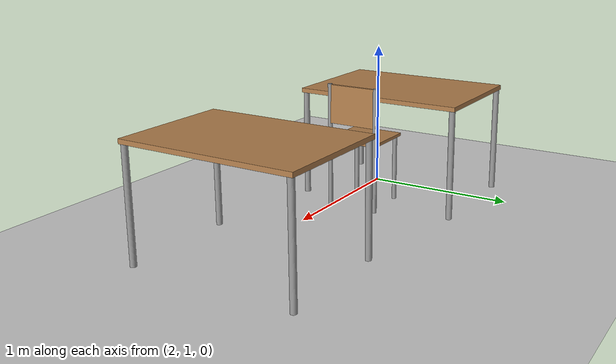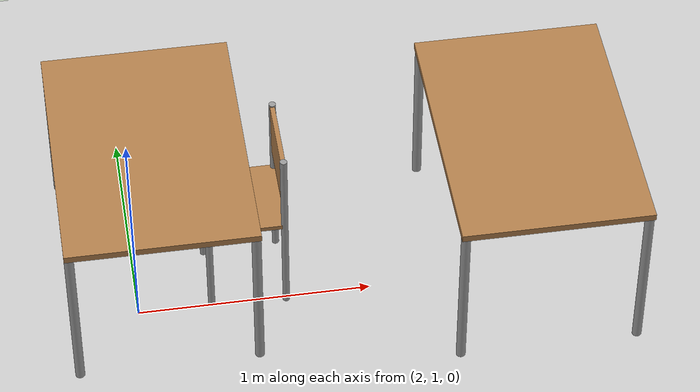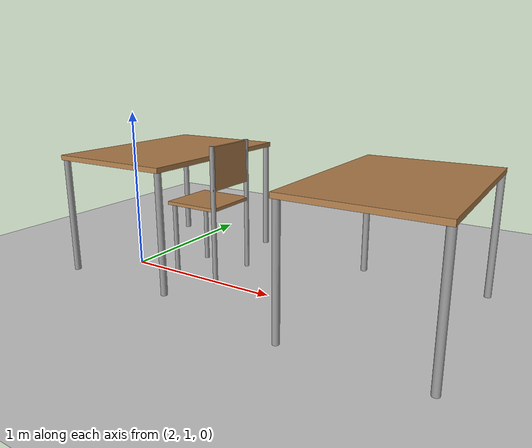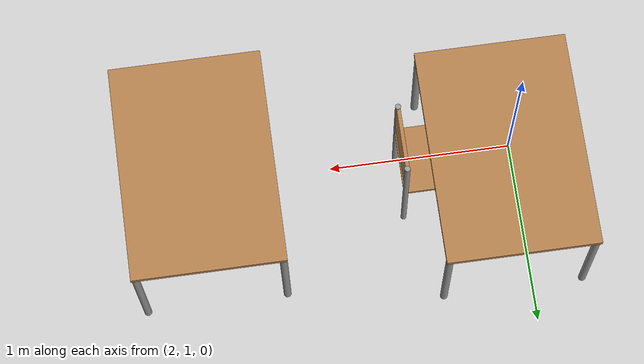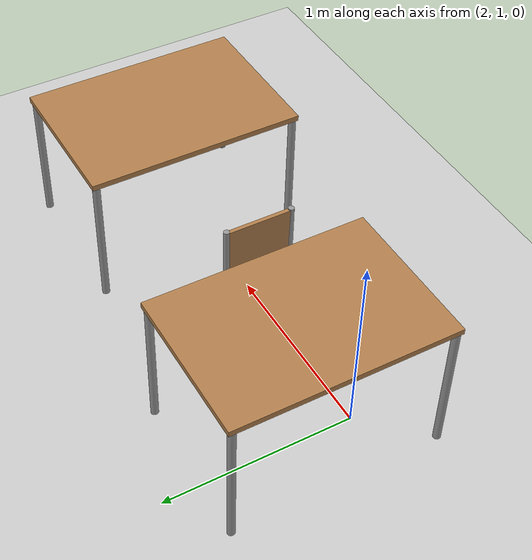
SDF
<sdf version="1.7">
 <world name="default">
  <model name="ground_plane">
   <static>1</static>
   <link name="link">
    <collision name="collision">
     <geometry><plane><normal>0 0 1</normal><size>100 100</size></plane></geometry>
     <surface>
      <contact><collide_bitmask>65535</collide_bitmask></contact>
      <friction><ode><mu>100</mu><mu2>50</mu2></ode></friction>
     </surface>
    </collision>
    <visual name="visual">
     <cast_shadows>0</cast_shadows>
     <geometry><plane><normal>0 0 1</normal><size>100 100</size></plane></geometry>
     <material>
      <script><uri>file://media/materials/scripts/gazebo.material</uri><name>Gazebo/Grey</name></script>
     </material>
    </visual>
   </link>
  </model>
  <model name="table_mod_clone_clone">
   <link name="link">
    <inertial>
     <mass>1</mass>
     <inertia><ixx>1</ixx><ixy>0</ixy><ixz>0</ixz><iyy>1</iyy><iyz>0</iyz><izz>1</izz></inertia>
    </inertial>
    <visual name="visual1">
     <pose>0 0 0.87 0 -0 0</pose>
     <geometry><box><size>1.15 0.8 0.03</size></box></geometry>
     <material>
      <script><uri>file://media/materials/scripts/gazebo.material</uri><name>Gazebo/Wood</name></script>
      <shader type="pixel"><normal_map>__default__</normal_map></shader>
      <ambient>1 1 1 1</ambient>
      <diffuse>1 1 1 1</diffuse>
      <specular>0.2 0.2 0.2 1</specular>
      <emissive>0 0 0 1</emissive>
     </material>
    </visual>
    <visual name="back_right_leg">
     <pose>-0.55 -0.38 0.5 0 -0 0</pose>
     <geometry><cylinder><radius>0.02</radius><length>0.75</length></cylinder></geometry>
     <material>
      <script><uri>file://media/materials/scripts/gazebo.material</uri><name>Gazebo/Grey</name></script>
      <shader type="pixel"><normal_map>__default__</normal_map></shader>
      <ambient>0.3 0.3 0.3 1</ambient>
      <diffuse>0.7 0.7 0.7 1</diffuse>
      <specular>0.01 0.01 0.01 1</specular>
      <emissive>0 0 0 1</emissive>
     </material>
    </visual>
    <visual name="front_right_leg">
     <pose>0.55 -0.38 0.5 0 -0 0</pose>
     <geometry><cylinder><radius>0.02</radius><length>0.75</length></cylinder></geometry>
     <material>
      <script><uri>file://media/materials/scripts/gazebo.material</uri><name>Gazebo/Grey</name></script>
      <shader type="pixel"><normal_map>__default__</normal_map></shader>
      <ambient>0.3 0.3 0.3 1</ambient>
      <diffuse>0.7 0.7 0.7 1</diffuse>
      <specular>0.01 0.01 0.01 1</specular>
      <emissive>0 0 0 1</emissive>
     </material>
    </visual>
    <visual name="back_left_leg">
     <pose>-0.55 0.38 0.5 0 -0 0</pose>
     <geometry><cylinder><radius>0.02</radius><length>0.75</length></cylinder></geometry>
     <material>
      <script><uri>file://media/materials/scripts/gazebo.material</uri><name>Gazebo/Grey</name></script>
      <shader type="pixel"><normal_map>__default__</normal_map></shader>
      <ambient>0.3 0.3 0.3 1</ambient>
      <diffuse>0.7 0.7 0.7 1</diffuse>
      <specular>0.01 0.01 0.01 1</specular>
      <emissive>0 0 0 1</emissive>
     </material>
    </visual>
    <visual name="front_left_leg">
     <pose>0.55 0.38 0.5 0 -0 0</pose>
     <geometry><cylinder><radius>0.02</radius><length>0.75</length></cylinder></geometry>
     <material>
      <script><uri>file://media/materials/scripts/gazebo.material</uri><name>Gazebo/Grey</name></script>
      <shader type="pixel"><normal_map>__default__</normal_map></shader>
      <ambient>0.3 0.3 0.3 1</ambient>
      <diffuse>0.7 0.7 0.7 1</diffuse>
      <specular>0.01 0.01 0.01 1</specular>
      <emissive>0 0 0 1</emissive>
     </material>
    </visual>
    <collision name="surface">
     <pose>0 0 0.87 0 -0 0</pose>
     <geometry><box><size>1.15 0.8 0.03</size></box></geometry>
     <surface>
      <friction>
       <ode><mu>0.6</mu><mu2>0.6</mu2><fdir1>0 0 0</fdir1><slip1>0</slip1><slip2>0</slip2></ode>
       <torsional>
        <coefficient>1</coefficient>
        <patch_radius>0</patch_radius>
        <surface_radius>0</surface_radius>
        <use_patch_radius>1</use_patch_radius>
        <ode><slip>0</slip></ode>
       </torsional>
      </friction>
      <bounce><restitution_coefficient>0</restitution_coefficient><threshold>1e+06</threshold></bounce>
      <contact>
       <collide_without_contact>0</collide_without_contact>
       <collide_without_contact_bitmask>1</collide_without_contact_bitmask>
       <collide_bitmask>1</collide_bitmask>
       <ode>
        <soft_cfm>0</soft_cfm>
        <soft_erp>0.2</soft_erp>
        <kp>1e+13</kp>
        <kd>1</kd>
        <max_vel>0.01</max_vel>
        <min_depth>0</min_depth>
       </ode>
       <bullet>
        <split_impulse>1</split_impulse>
        <split_impulse_penetration_threshold>-0.01</split_impulse_penetration_threshold>
        <soft_cfm>0</soft_cfm>
        <soft_erp>0.2</soft_erp>
        <kp>1e+13</kp>
        <kd>1</kd>
       </bullet>
      </contact>
     </surface>
    </collision>
    <collision name="back_right_leg">
     <pose>-0.55 -0.38 0.5 0 -0 0</pose>
     <geometry><cylinder><radius>0.02</radius><length>0.75</length></cylinder></geometry>
     <surface>
      <friction>
       <ode><mu>1</mu><mu2>1</mu2><fdir1>0 0 0</fdir1><slip1>0</slip1><slip2>0</slip2></ode>
       <torsional>
        <coefficient>1</coefficient>
        <patch_radius>0</patch_radius>
        <surface_radius>0</surface_radius>
        <use_patch_radius>1</use_patch_radius>
        <ode><slip>0</slip></ode>
       </torsional>
      </friction>
      <bounce><restitution_coefficient>0</restitution_coefficient><threshold>1e+06</threshold></bounce>
      <contact>
       <collide_without_contact>0</collide_without_contact>
       <collide_without_contact_bitmask>1</collide_without_contact_bitmask>
       <collide_bitmask>1</collide_bitmask>
       <ode>
        <soft_cfm>0</soft_cfm>
        <soft_erp>0.2</soft_erp>
        <kp>1e+13</kp>
        <kd>1</kd>
        <max_vel>0.01</max_vel>
        <min_depth>0</min_depth>
       </ode>
       <bullet>
        <split_impulse>1</split_impulse>
        <split_impulse_penetration_threshold>-0.01</split_impulse_penetration_threshold>
        <soft_cfm>0</soft_cfm>
        <soft_erp>0.2</soft_erp>
        <kp>1e+13</kp>
        <kd>1</kd>
       </bullet>
      </contact>
     </surface>
    </collision>
    <collision name="back_left_leg">
     <pose>-0.55 0.38 0.5 0 -0 0</pose>
     <geometry><cylinder><radius>0.02</radius><length>0.75</length></cylinder></geometry>
     <surface>
      <friction>
       <ode><mu>1</mu><mu2>1</mu2><fdir1>0 0 0</fdir1><slip1>0</slip1><slip2>0</slip2></ode>
       <torsional>
        <coefficient>1</coefficient>
        <patch_radius>0</patch_radius>
        <surface_radius>0</surface_radius>
        <use_patch_radius>1</use_patch_radius>
        <ode><slip>0</slip></ode>
       </torsional>
      </friction>
      <bounce><restitution_coefficient>0</restitution_coefficient><threshold>1e+06</threshold></bounce>
      <contact>
       <collide_without_contact>0</collide_without_contact>
       <collide_without_contact_bitmask>1</collide_without_contact_bitmask>
       <collide_bitmask>1</collide_bitmask>
       <ode>
        <soft_cfm>0</soft_cfm>
        <soft_erp>0.2</soft_erp>
        <kp>1e+13</kp>
        <kd>1</kd>
        <max_vel>0.01</max_vel>
        <min_depth>0</min_depth>
       </ode>
       <bullet>
        <split_impulse>1</split_impulse>
        <split_impulse_penetration_threshold>-0.01</split_impulse_penetration_threshold>
        <soft_cfm>0</soft_cfm>
        <soft_erp>0.2</soft_erp>
        <kp>1e+13</kp>
        <kd>1</kd>
       </bullet>
      </contact>
     </surface>
    </collision>
    <collision name="front_left_leg">
     <pose>0.55 0.38 0.5 0 -0 0</pose>
     <geometry><cylinder><radius>0.02</radius><length>0.75</length></cylinder></geometry>
     <surface>
      <friction>
       <ode><mu>1</mu><mu2>1</mu2><fdir1>0 0 0</fdir1><slip1>0</slip1><slip2>0</slip2></ode>
       <torsional>
        <coefficient>1</coefficient>
        <patch_radius>0</patch_radius>
        <surface_radius>0</surface_radius>
        <use_patch_radius>1</use_patch_radius>
        <ode><slip>0</slip></ode>
       </torsional>
      </friction>
      <bounce><restitution_coefficient>0</restitution_coefficient><threshold>1e+06</threshold></bounce>
      <contact>
       <collide_without_contact>0</collide_without_contact>
       <collide_without_contact_bitmask>1</collide_without_contact_bitmask>
       <collide_bitmask>1</collide_bitmask>
       <ode>
        <soft_cfm>0</soft_cfm>
        <soft_erp>0.2</soft_erp>
        <kp>1e+13</kp>
        <kd>1</kd>
        <max_vel>0.01</max_vel>
        <min_depth>0</min_depth>
       </ode>
       <bullet>
        <split_impulse>1</split_impulse>
        <split_impulse_penetration_threshold>-0.01</split_impulse_penetration_threshold>
        <soft_cfm>0</soft_cfm>
        <soft_erp>0.2</soft_erp>
        <kp>1e+13</kp>
        <kd>1</kd>
       </bullet>
      </contact>
     </surface>
    </collision>
    <collision name="front_right_leg">
     <pose>0.55 -0.38 0.5 0 -0 0</pose>
     <geometry><cylinder><radius>0.02</radius><length>0.75</length></cylinder></geometry>
     <surface>
      <friction>
       <ode><mu>1</mu><mu2>1</mu2><fdir1>0 0 0</fdir1><slip1>0</slip1><slip2>0</slip2></ode>
       <torsional>
        <coefficient>1</coefficient>
        <patch_radius>0</patch_radius>
        <surface_radius>0</surface_radius>
        <use_patch_radius>1</use_patch_radius>
        <ode><slip>0</slip></ode>
       </torsional>
      </friction>
      <bounce><restitution_coefficient>0</restitution_coefficient><threshold>1e+06</threshold></bounce>
      <contact>
       <collide_without_contact>0</collide_without_contact>
       <collide_without_contact_bitmask>1</collide_without_contact_bitmask>
       <collide_bitmask>1</collide_bitmask>
       <ode>
        <soft_cfm>0</soft_cfm>
        <soft_erp>0.2</soft_erp>
        <kp>1e+13</kp>
        <kd>1</kd>
        <max_vel>0.01</max_vel>
        <min_depth>0</min_depth>
       </ode>
       <bullet>
        <split_impulse>1</split_impulse>
        <split_impulse_penetration_threshold>-0.01</split_impulse_penetration_threshold>
        <soft_cfm>0</soft_cfm>
        <soft_erp>0.2</soft_erp>
        <kp>1e+13</kp>
        <kd>1</kd>
       </bullet>
      </contact>
     </surface>
    </collision>
   </link>
   <static>1</static>
   <pose>2.10296 1.2473 -0.134214 0 0 -1.5708</pose>
  </model>
  <model name="table_mod_clone_clone_0">
   <link name="link">
    <inertial>
     <mass>1</mass>
     <inertia><ixx>1</ixx><ixy>0</ixy><ixz>0</ixz><iyy>1</iyy><iyz>0</iyz><izz>1</izz></inertia>
    </inertial>
    <visual name="visual1">
     <pose>0 0 0.87 0 -0 0</pose>
     <geometry><box><size>1.15 0.8 0.03</size></box></geometry>
     <material>
      <script><uri>file://media/materials/scripts/gazebo.material</uri><name>Gazebo/Wood</name></script>
      <shader type="pixel"><normal_map>__default__</normal_map></shader>
      <ambient>1 1 1 1</ambient>
      <diffuse>1 1 1 1</diffuse>
      <specular>0.2 0.2 0.2 1</specular>
      <emissive>0 0 0 1</emissive>
     </material>
    </visual>
    <visual name="back_right_leg">
     <pose>-0.55 -0.38 0.5 0 -0 0</pose>
     <geometry><cylinder><radius>0.02</radius><length>0.75</length></cylinder></geometry>
     <material>
      <script><uri>file://media/materials/scripts/gazebo.material</uri><name>Gazebo/Grey</name></script>
      <shader type="pixel"><normal_map>__default__</normal_map></shader>
      <ambient>0.3 0.3 0.3 1</ambient>
      <diffuse>0.7 0.7 0.7 1</diffuse>
      <specular>0.01 0.01 0.01 1</specular>
      <emissive>0 0 0 1</emissive>
     </material>
    </visual>
    <visual name="front_right_leg">
     <pose>0.55 -0.38 0.5 0 -0 0</pose>
     <geometry><cylinder><radius>0.02</radius><length>0.75</length></cylinder></geometry>
     <material>
      <script><uri>file://media/materials/scripts/gazebo.material</uri><name>Gazebo/Grey</name></script>
      <shader type="pixel"><normal_map>__default__</normal_map></shader>
      <ambient>0.3 0.3 0.3 1</ambient>
      <diffuse>0.7 0.7 0.7 1</diffuse>
      <specular>0.01 0.01 0.01 1</specular>
      <emissive>0 0 0 1</emissive>
     </material>
    </visual>
    <visual name="back_left_leg">
     <pose>-0.55 0.38 0.5 0 -0 0</pose>
     <geometry><cylinder><radius>0.02</radius><length>0.75</length></cylinder></geometry>
     <material>
      <script><uri>file://media/materials/scripts/gazebo.material</uri><name>Gazebo/Grey</name></script>
      <shader type="pixel"><normal_map>__default__</normal_map></shader>
      <ambient>0.3 0.3 0.3 1</ambient>
      <diffuse>0.7 0.7 0.7 1</diffuse>
      <specular>0.01 0.01 0.01 1</specular>
      <emissive>0 0 0 1</emissive>
     </material>
    </visual>
    <visual name="front_left_leg">
     <pose>0.55 0.38 0.5 0 -0 0</pose>
     <geometry><cylinder><radius>0.02</radius><length>0.75</length></cylinder></geometry>
     <material>
      <script><uri>file://media/materials/scripts/gazebo.material</uri><name>Gazebo/Grey</name></script>
      <shader type="pixel"><normal_map>__default__</normal_map></shader>
      <ambient>0.3 0.3 0.3 1</ambient>
      <diffuse>0.7 0.7 0.7 1</diffuse>
      <specular>0.01 0.01 0.01 1</specular>
      <emissive>0 0 0 1</emissive>
     </material>
    </visual>
    <collision name="surface">
     <pose>0 0 0.87 0 -0 0</pose>
     <geometry><box><size>1.15 0.8 0.03</size></box></geometry>
     <surface>
      <friction>
       <ode><mu>0.6</mu><mu2>0.6</mu2><fdir1>0 0 0</fdir1><slip1>0</slip1><slip2>0</slip2></ode>
       <torsional>
        <coefficient>1</coefficient>
        <patch_radius>0</patch_radius>
        <surface_radius>0</surface_radius>
        <use_patch_radius>1</use_patch_radius>
        <ode><slip>0</slip></ode>
       </torsional>
      </friction>
      <bounce><restitution_coefficient>0</restitution_coefficient><threshold>1e+06</threshold></bounce>
      <contact>
       <collide_without_contact>0</collide_without_contact>
       <collide_without_contact_bitmask>1</collide_without_contact_bitmask>
       <collide_bitmask>1</collide_bitmask>
       <ode>
        <soft_cfm>0</soft_cfm>
        <soft_erp>0.2</soft_erp>
        <kp>1e+13</kp>
        <kd>1</kd>
        <max_vel>0.01</max_vel>
        <min_depth>0</min_depth>
       </ode>
       <bullet>
        <split_impulse>1</split_impulse>
        <split_impulse_penetration_threshold>-0.01</split_impulse_penetration_threshold>
        <soft_cfm>0</soft_cfm>
        <soft_erp>0.2</soft_erp>
        <kp>1e+13</kp>
        <kd>1</kd>
       </bullet>
      </contact>
     </surface>
    </collision>
    <collision name="back_right_leg">
     <pose>-0.55 -0.38 0.5 0 -0 0</pose>
     <geometry><cylinder><radius>0.02</radius><length>0.75</length></cylinder></geometry>
     <surface>
      <friction>
       <ode><mu>1</mu><mu2>1</mu2><fdir1>0 0 0</fdir1><slip1>0</slip1><slip2>0</slip2></ode>
       <torsional>
        <coefficient>1</coefficient>
        <patch_radius>0</patch_radius>
        <surface_radius>0</surface_radius>
        <use_patch_radius>1</use_patch_radius>
        <ode><slip>0</slip></ode>
       </torsional>
      </friction>
      <bounce><restitution_coefficient>0</restitution_coefficient><threshold>1e+06</threshold></bounce>
      <contact>
       <collide_without_contact>0</collide_without_contact>
       <collide_without_contact_bitmask>1</collide_without_contact_bitmask>
       <collide_bitmask>1</collide_bitmask>
       <ode>
        <soft_cfm>0</soft_cfm>
        <soft_erp>0.2</soft_erp>
        <kp>1e+13</kp>
        <kd>1</kd>
        <max_vel>0.01</max_vel>
        <min_depth>0</min_depth>
       </ode>
       <bullet>
        <split_impulse>1</split_impulse>
        <split_impulse_penetration_threshold>-0.01</split_impulse_penetration_threshold>
        <soft_cfm>0</soft_cfm>
        <soft_erp>0.2</soft_erp>
        <kp>1e+13</kp>
        <kd>1</kd>
       </bullet>
      </contact>
     </surface>
    </collision>
    <collision name="back_left_leg">
     <pose>-0.55 0.38 0.5 0 -0 0</pose>
     <geometry><cylinder><radius>0.02</radius><length>0.75</length></cylinder></geometry>
     <surface>
      <friction>
       <ode><mu>1</mu><mu2>1</mu2><fdir1>0 0 0</fdir1><slip1>0</slip1><slip2>0</slip2></ode>
       <torsional>
        <coefficient>1</coefficient>
        <patch_radius>0</patch_radius>
        <surface_radius>0</surface_radius>
        <use_patch_radius>1</use_patch_radius>
        <ode><slip>0</slip></ode>
       </torsional>
      </friction>
      <bounce><restitution_coefficient>0</restitution_coefficient><threshold>1e+06</threshold></bounce>
      <contact>
       <collide_without_contact>0</collide_without_contact>
       <collide_without_contact_bitmask>1</collide_without_contact_bitmask>
       <collide_bitmask>1</collide_bitmask>
       <ode>
        <soft_cfm>0</soft_cfm>
        <soft_erp>0.2</soft_erp>
        <kp>1e+13</kp>
        <kd>1</kd>
        <max_vel>0.01</max_vel>
        <min_depth>0</min_depth>
       </ode>
       <bullet>
        <split_impulse>1</split_impulse>
        <split_impulse_penetration_threshold>-0.01</split_impulse_penetration_threshold>
        <soft_cfm>0</soft_cfm>
        <soft_erp>0.2</soft_erp>
        <kp>1e+13</kp>
        <kd>1</kd>
       </bullet>
      </contact>
     </surface>
    </collision>
    <collision name="front_left_leg">
     <pose>0.55 0.38 0.5 0 -0 0</pose>
     <geometry><cylinder><radius>0.02</radius><length>0.75</length></cylinder></geometry>
     <surface>
      <friction>
       <ode><mu>1</mu><mu2>1</mu2><fdir1>0 0 0</fdir1><slip1>0</slip1><slip2>0</slip2></ode>
       <torsional>
        <coefficient>1</coefficient>
        <patch_radius>0</patch_radius>
        <surface_radius>0</surface_radius>
        <use_patch_radius>1</use_patch_radius>
        <ode><slip>0</slip></ode>
       </torsional>
      </friction>
      <bounce><restitution_coefficient>0</restitution_coefficient><threshold>1e+06</threshold></bounce>
      <contact>
       <collide_without_contact>0</collide_without_contact>
       <collide_without_contact_bitmask>1</collide_without_contact_bitmask>
       <collide_bitmask>1</collide_bitmask>
       <ode>
        <soft_cfm>0</soft_cfm>
        <soft_erp>0.2</soft_erp>
        <kp>1e+13</kp>
        <kd>1</kd>
        <max_vel>0.01</max_vel>
        <min_depth>0</min_depth>
       </ode>
       <bullet>
        <split_impulse>1</split_impulse>
        <split_impulse_penetration_threshold>-0.01</split_impulse_penetration_threshold>
        <soft_cfm>0</soft_cfm>
        <soft_erp>0.2</soft_erp>
        <kp>1e+13</kp>
        <kd>1</kd>
       </bullet>
      </contact>
     </surface>
    </collision>
    <collision name="front_right_leg">
     <pose>0.55 -0.38 0.5 0 -0 0</pose>
     <geometry><cylinder><radius>0.02</radius><length>0.75</length></cylinder></geometry>
     <surface>
      <friction>
       <ode><mu>1</mu><mu2>1</mu2><fdir1>0 0 0</fdir1><slip1>0</slip1><slip2>0</slip2></ode>
       <torsional>
        <coefficient>1</coefficient>
        <patch_radius>0</patch_radius>
        <surface_radius>0</surface_radius>
        <use_patch_radius>1</use_patch_radius>
        <ode><slip>0</slip></ode>
       </torsional>
      </friction>
      <bounce><restitution_coefficient>0</restitution_coefficient><threshold>1e+06</threshold></bounce>
      <contact>
       <collide_without_contact>0</collide_without_contact>
       <collide_without_contact_bitmask>1</collide_without_contact_bitmask>
       <collide_bitmask>1</collide_bitmask>
       <ode>
        <soft_cfm>0</soft_cfm>
        <soft_erp>0.2</soft_erp>
        <kp>1e+13</kp>
        <kd>1</kd>
        <max_vel>0.01</max_vel>
        <min_depth>0</min_depth>
       </ode>
       <bullet>
        <split_impulse>1</split_impulse>
        <split_impulse_penetration_threshold>-0.01</split_impulse_penetration_threshold>
        <soft_cfm>0</soft_cfm>
        <soft_erp>0.2</soft_erp>
        <kp>1e+13</kp>
        <kd>1</kd>
       </bullet>
      </contact>
     </surface>
    </collision>
   </link>
   <static>1</static>
   <pose>3.70062 1.11993 -0.134214 0 0 -1.5708</pose>
  </model>
  <model name="chair_mod_0_clone_0">
   <link name="link">
    <inertial>
     <mass>1</mass>
     <inertia><ixx>1</ixx><ixy>0</ixy><ixz>0</ixz><iyy>1</iyy><iyz>0</iyz><izz>1</izz></inertia>
    </inertial>
    <visual name="back_right_leg">
     <pose>-0.17 -0.17 0.42 0 -0 0</pose>
     <geometry><cylinder><radius>0.015</radius><length>0.84</length></cylinder></geometry>
     <material>
      <script><uri>file://media/materials/scripts/gazebo.material</uri><name>Gazebo/Grey</name></script>
      <shader type="pixel"><normal_map>__default__</normal_map></shader>
      <ambient>0.3 0.3 0.3 1</ambient>
      <diffuse>0.7 0.7 0.7 1</diffuse>
      <specular>0.01 0.01 0.01 1</specular>
      <emissive>0 0 0 1</emissive>
     </material>
    </visual>
    <visual name="back_left_leg">
     <pose>-0.15 0.15 0.23 0 -0 0</pose>
     <geometry><cylinder><radius>0.015</radius><length>0.46</length></cylinder></geometry>
     <material>
      <script><uri>file://media/materials/scripts/gazebo.material</uri><name>Gazebo/Grey</name></script>
      <shader type="pixel"><normal_map>__default__</normal_map></shader>
      <ambient>0.3 0.3 0.3 1</ambient>
      <diffuse>0.7 0.7 0.7 1</diffuse>
      <specular>0.01 0.01 0.01 1</specular>
      <emissive>0 0 0 1</emissive>
     </material>
    </visual>
    <visual name="visual1">
     <pose>0 0 0.46 0 -0 0</pose>
     <geometry><box><size>0.36 0.36 0.02</size></box></geometry>
     <material>
      <script><uri>file://media/materials/scripts/gazebo.material</uri><name>Gazebo/Wood</name></script>
      <shader type="pixel"><normal_map>__default__</normal_map></shader>
      <ambient>1 1 1 1</ambient>
      <diffuse>1 1 1 1</diffuse>
      <specular>0.2 0.2 0.2 1</specular>
      <emissive>0 0 0 1</emissive>
     </material>
    </visual>
    <visual name="ModelPreview_1::link::visual_5">
     <pose>0 -0.17 0.705 1.56 -0 0</pose>
     <geometry><box><size>0.36 0.26 0.02</size></box></geometry>
     <material>
      <script><uri>file://media/materials/scripts/gazebo.material</uri><name>Gazebo/Wood</name></script>
      <shader type="pixel"><normal_map>__default__</normal_map></shader>
      <ambient>1 1 1 1</ambient>
      <diffuse>1 1 1 1</diffuse>
      <specular>0.2 0.2 0.2 1</specular>
      <emissive>0 0 0 1</emissive>
     </material>
    </visual>
    <visual name="front_left_leg">
     <pose>0.15 0.15 0.23 0 -0 0</pose>
     <geometry><cylinder><radius>0.015</radius><length>0.46</length></cylinder></geometry>
     <material>
      <script><uri>file://media/materials/scripts/gazebo.material</uri><name>Gazebo/Grey</name></script>
      <shader type="pixel"><normal_map>__default__</normal_map></shader>
      <ambient>0.3 0.3 0.3 1</ambient>
      <diffuse>0.7 0.7 0.7 1</diffuse>
      <specular>0.01 0.01 0.01 1</specular>
      <emissive>0 0 0 1</emissive>
     </material>
    </visual>
    <visual name="front_right_leg">
     <pose>0.17 -0.17 0.42 0 -0 0</pose>
     <geometry><cylinder><radius>0.015</radius><length>0.84</length></cylinder></geometry>
     <material>
      <script><uri>file://media/materials/scripts/gazebo.material</uri><name>Gazebo/Grey</name></script>
      <shader type="pixel"><normal_map>__default__</normal_map></shader>
      <ambient>0.3 0.3 0.3 1</ambient>
      <diffuse>0.7 0.7 0.7 1</diffuse>
      <specular>0.01 0.01 0.01 1</specular>
      <emissive>0 0 0 1</emissive>
     </material>
    </visual>
    <collision name="front_right_leg">
     <pose>0.17 -0.17 0.42 0 -0 0</pose>
     <geometry><cylinder><radius>0.015</radius><length>0.84</length></cylinder></geometry>
     <surface>
      <friction>
       <ode><mu>1</mu><mu2>1</mu2><fdir1>0 0 0</fdir1><slip1>0</slip1><slip2>0</slip2></ode>
       <torsional>
        <coefficient>1</coefficient>
        <patch_radius>0</patch_radius>
        <surface_radius>0</surface_radius>
        <use_patch_radius>1</use_patch_radius>
        <ode><slip>0</slip></ode>
       </torsional>
      </friction>
      <bounce><restitution_coefficient>0</restitution_coefficient><threshold>1e+06</threshold></bounce>
      <contact>
       <collide_without_contact>0</collide_without_contact>
       <collide_without_contact_bitmask>1</collide_without_contact_bitmask>
       <collide_bitmask>1</collide_bitmask>
       <ode>
        <soft_cfm>0</soft_cfm>
        <soft_erp>0.2</soft_erp>
        <kp>1e+13</kp>
        <kd>1</kd>
        <max_vel>0.01</max_vel>
        <min_depth>0</min_depth>
       </ode>
       <bullet>
        <split_impulse>1</split_impulse>
        <split_impulse_penetration_threshold>-0.01</split_impulse_penetration_threshold>
        <soft_cfm>0</soft_cfm>
        <soft_erp>0.2</soft_erp>
        <kp>1e+13</kp>
        <kd>1</kd>
       </bullet>
      </contact>
     </surface>
    </collision>
    <collision name="back_right_leg">
     <pose>-0.17 -0.17 0.42 0 -0 0</pose>
     <geometry><cylinder><radius>0.015</radius><length>0.84</length></cylinder></geometry>
     <surface>
      <friction>
       <ode><mu>1</mu><mu2>1</mu2><fdir1>0 0 0</fdir1><slip1>0</slip1><slip2>0</slip2></ode>
       <torsional>
        <coefficient>1</coefficient>
        <patch_radius>0</patch_radius>
        <surface_radius>0</surface_radius>
        <use_patch_radius>1</use_patch_radius>
        <ode><slip>0</slip></ode>
       </torsional>
      </friction>
      <bounce><restitution_coefficient>0</restitution_coefficient><threshold>1e+06</threshold></bounce>
      <contact>
       <collide_without_contact>0</collide_without_contact>
       <collide_without_contact_bitmask>1</collide_without_contact_bitmask>
       <collide_bitmask>1</collide_bitmask>
       <ode>
        <soft_cfm>0</soft_cfm>
        <soft_erp>0.2</soft_erp>
        <kp>1e+13</kp>
        <kd>1</kd>
        <max_vel>0.01</max_vel>
        <min_depth>0</min_depth>
       </ode>
       <bullet>
        <split_impulse>1</split_impulse>
        <split_impulse_penetration_threshold>-0.01</split_impulse_penetration_threshold>
        <soft_cfm>0</soft_cfm>
        <soft_erp>0.2</soft_erp>
        <kp>1e+13</kp>
        <kd>1</kd>
       </bullet>
      </contact>
     </surface>
    </collision>
    <collision name="back_left_leg">
     <pose>-0.15 0.15 0.23 0 -0 0</pose>
     <geometry><cylinder><radius>0.015</radius><length>0.46</length></cylinder></geometry>
     <surface>
      <friction>
       <ode><mu>1</mu><mu2>1</mu2><fdir1>0 0 0</fdir1><slip1>0</slip1><slip2>0</slip2></ode>
       <torsional>
        <coefficient>1</coefficient>
        <patch_radius>0</patch_radius>
        <surface_radius>0</surface_radius>
        <use_patch_radius>1</use_patch_radius>
        <ode><slip>0</slip></ode>
       </torsional>
      </friction>
      <bounce><restitution_coefficient>0</restitution_coefficient><threshold>1e+06</threshold></bounce>
      <contact>
       <collide_without_contact>0</collide_without_contact>
       <collide_without_contact_bitmask>1</collide_without_contact_bitmask>
       <collide_bitmask>1</collide_bitmask>
       <ode>
        <soft_cfm>0</soft_cfm>
        <soft_erp>0.2</soft_erp>
        <kp>1e+13</kp>
        <kd>1</kd>
        <max_vel>0.01</max_vel>
        <min_depth>0</min_depth>
       </ode>
       <bullet>
        <split_impulse>1</split_impulse>
        <split_impulse_penetration_threshold>-0.01</split_impulse_penetration_threshold>
        <soft_cfm>0</soft_cfm>
        <soft_erp>0.2</soft_erp>
        <kp>1e+13</kp>
        <kd>1</kd>
       </bullet>
      </contact>
     </surface>
    </collision>
    <collision name="collision_6">
     <pose>0 -0.17 0.705 1.56 -0 0</pose>
     <geometry><box><size>0.36 0.26 0.03</size></box></geometry>
     <surface>
      <friction>
       <ode><mu>1</mu><mu2>1</mu2><fdir1>0 0 0</fdir1><slip1>0</slip1><slip2>0</slip2></ode>
       <torsional>
        <coefficient>1</coefficient>
        <patch_radius>0</patch_radius>
        <surface_radius>0</surface_radius>
        <use_patch_radius>1</use_patch_radius>
        <ode><slip>0</slip></ode>
       </torsional>
      </friction>
      <bounce><restitution_coefficient>0</restitution_coefficient><threshold>1e+06</threshold></bounce>
      <contact>
       <collide_without_contact>0</collide_without_contact>
       <collide_without_contact_bitmask>1</collide_without_contact_bitmask>
       <collide_bitmask>1</collide_bitmask>
       <ode>
        <soft_cfm>0</soft_cfm>
        <soft_erp>0.2</soft_erp>
        <kp>1e+13</kp>
        <kd>1</kd>
        <max_vel>0.01</max_vel>
        <min_depth>0</min_depth>
       </ode>
       <bullet>
        <split_impulse>1</split_impulse>
        <split_impulse_penetration_threshold>-0.01</split_impulse_penetration_threshold>
        <soft_cfm>0</soft_cfm>
        <soft_erp>0.2</soft_erp>
        <kp>1e+13</kp>
        <kd>1</kd>
       </bullet>
      </contact>
     </surface>
    </collision>
    <collision name="surface">
     <pose>0 0 0.46 0 -0 0</pose>
     <geometry><box><size>0.36 0.36 0.03</size></box></geometry>
     <surface>
      <friction>
       <ode><mu>0.6</mu><mu2>0.6</mu2><fdir1>0 0 0</fdir1><slip1>0</slip1><slip2>0</slip2></ode>
       <torsional>
        <coefficient>1</coefficient>
        <patch_radius>0</patch_radius>
        <surface_radius>0</surface_radius>
        <use_patch_radius>1</use_patch_radius>
        <ode><slip>0</slip></ode>
       </torsional>
      </friction>
      <bounce><restitution_coefficient>0</restitution_coefficient><threshold>1e+06</threshold></bounce>
      <contact>
       <collide_without_contact>0</collide_without_contact>
       <collide_without_contact_bitmask>1</collide_without_contact_bitmask>
       <collide_bitmask>1</collide_bitmask>
       <ode>
        <soft_cfm>0</soft_cfm>
        <soft_erp>0.2</soft_erp>
        <kp>1e+13</kp>
        <kd>1</kd>
        <max_vel>0.01</max_vel>
        <min_depth>0</min_depth>
       </ode>
       <bullet>
        <split_impulse>1</split_impulse>
        <split_impulse_penetration_threshold>-0.01</split_impulse_penetration_threshold>
        <soft_cfm>0</soft_cfm>
        <soft_erp>0.2</soft_erp>
        <kp>1e+13</kp>
        <kd>1</kd>
       </bullet>
      </contact>
     </surface>
    </collision>
    <collision name="front_left_leg">
     <pose>0.15 0.15 0.23 0 -0 0</pose>
     <geometry><cylinder><radius>0.015</radius><length>0.46</length></cylinder></geometry>
     <surface>
      <friction>
       <ode><mu>1</mu><mu2>1</mu2><fdir1>0 0 0</fdir1><slip1>0</slip1><slip2>0</slip2></ode>
       <torsional>
        <coefficient>1</coefficient>
        <patch_radius>0</patch_radius>
        <surface_radius>0</surface_radius>
        <use_patch_radius>1</use_patch_radius>
        <ode><slip>0</slip></ode>
       </torsional>
      </friction>
      <bounce><restitution_coefficient>0</restitution_coefficient><threshold>1e+06</threshold></bounce>
      <contact>
       <collide_without_contact>0</collide_without_contact>
       <collide_without_contact_bitmask>1</collide_without_contact_bitmask>
       <collide_bitmask>1</collide_bitmask>
       <ode>
        <soft_cfm>0</soft_cfm>
        <soft_erp>0.2</soft_erp>
        <kp>1e+13</kp>
        <kd>1</kd>
        <max_vel>0.01</max_vel>
        <min_depth>0</min_depth>
       </ode>
       <bullet>
        <split_impulse>1</split_impulse>
        <split_impulse_penetration_threshold>-0.01</split_impulse_penetration_threshold>
        <soft_cfm>0</soft_cfm>
        <soft_erp>0.2</soft_erp>
        <kp>1e+13</kp>
        <kd>1</kd>
       </bullet>
      </contact>
     </surface>
    </collision>
   </link>
   <static>1</static>
   <pose>2.46518 1.15544 0 0 -0 1.5708</pose>
  </model>
 </world>
</sdf>
